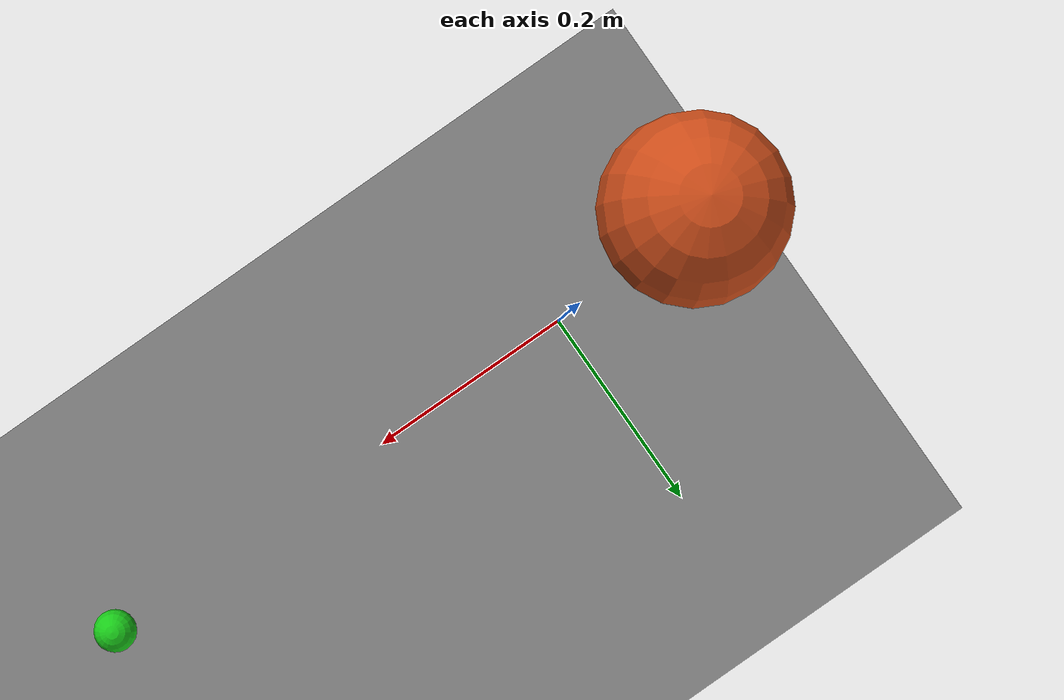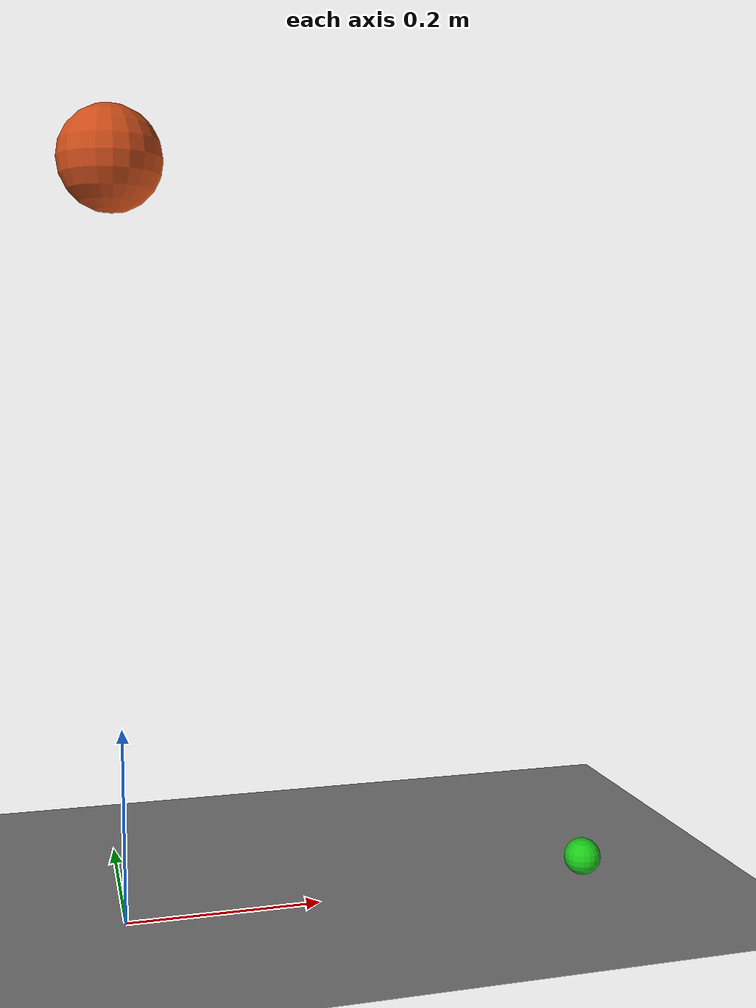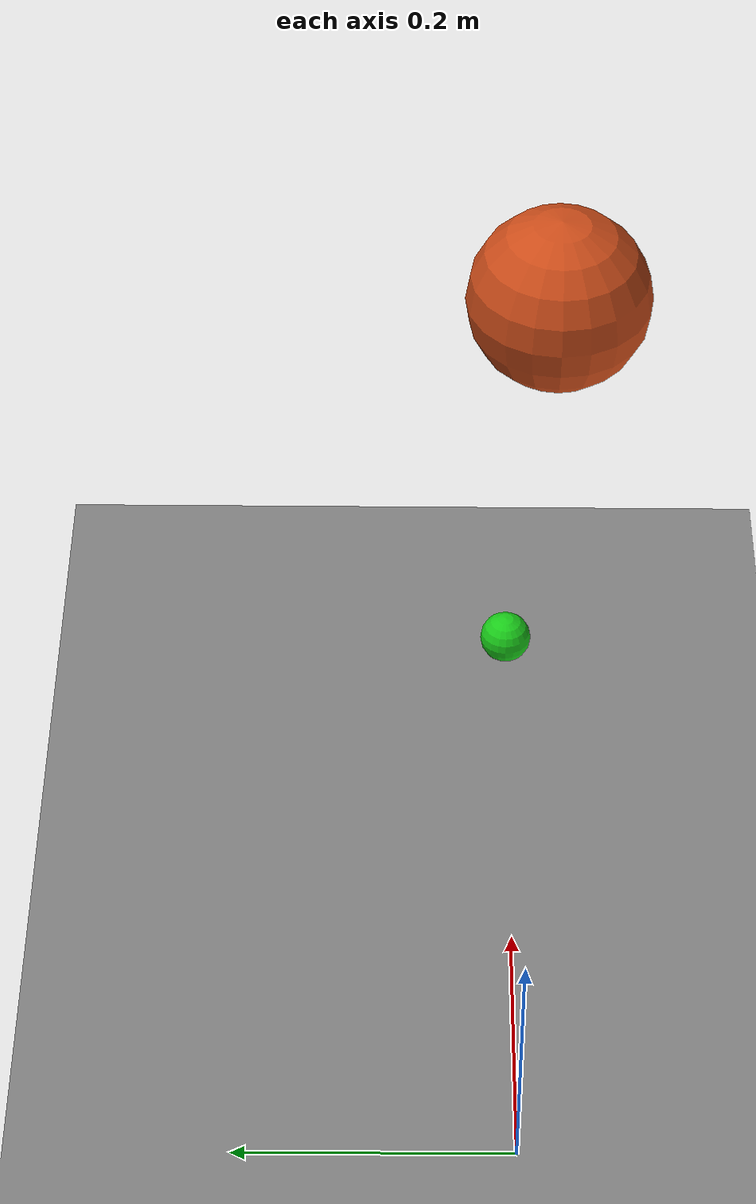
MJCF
<mujoco model="ant-hive-world-embodiment-s2-bridge">

  <option gravity="0 0 -9.81" timestep="0.002"/>

  <worldbody>
    <light name="light" pos="0 0 3" dir="0 0 -1" diffuse="1 1 1"/>
    <geom name="ground" type="plane" size="2 2 0.1" rgba="0.5 0.5 0.5 1" solref="0.005 1"/>

    <body name="ant_placeholder" pos="0 0 0.75">
      <freejoint name="ant_placeholder_free"/>
      <geom name="ant_placeholder_geom" type="sphere" size="0.05" rgba="0.8 0.3 0.1 1" mass="0.01" solref="0.005 1"/>
    </body>

    <body name="target_marker" pos="0.5 0 0.02">
      <geom name="target_marker_geom" type="sphere" size="0.02" rgba="0.1 0.8 0.1 1" contype="0" conaffinity="0"/>
    </body>
  </worldbody>
</mujoco>
